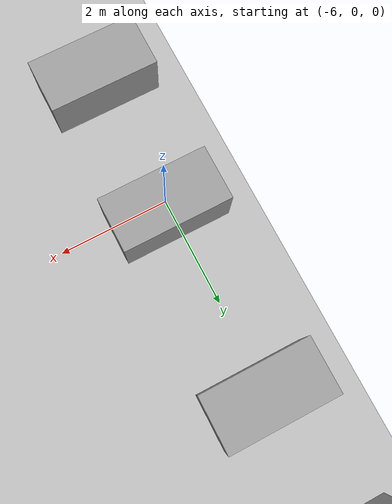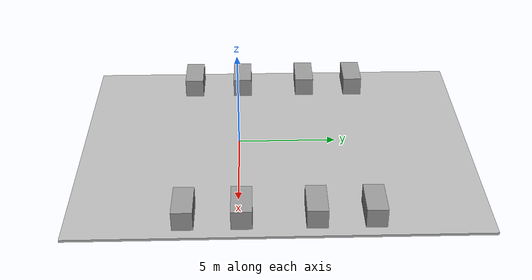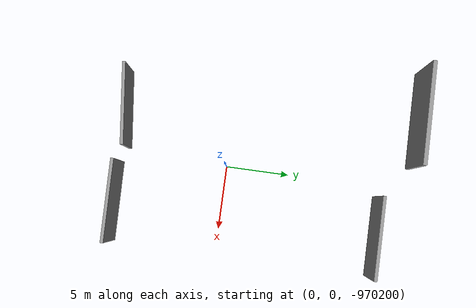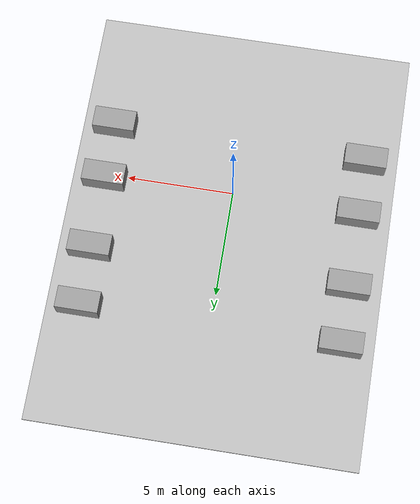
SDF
<sdf version="1.6">
 <world name="default">
  <gravity>0 0 -9.8</gravity>
  <physics name="default_physics" default="0" type="ode">
   <max_step_size>0.001</max_step_size>
   <real_time_factor>1</real_time_factor>
   <real_time_update_rate>1000</real_time_update_rate>
  </physics>
  <model name="warehouse_floor">
   <pose>0.069154 1.90936 -0.200832 0 -0 0</pose>
   <static>1</static>
   <link name="body">
    <inertial>
     <mass>1000</mass>
     <inertia>
      <ixx>1.20008e+06</ixx>
      <ixy>0</ixy>
      <ixz>0</ixz>
      <iyy>8.33342e+06</iyy>
      <iyz>0</iyz>
      <izz>2.03333e+06</izz>
     </inertia>
    </inertial>
    <collision name="collision">
     <geometry>
      <mesh><uri>model://warehouse_floor/meshes/NEWGROUND_TEXTURED.dae</uri><scale>1 1 1</scale></mesh>
     </geometry>
     <surface>
      <friction><ode><mu>0.3</mu><mu2>0.3</mu2><fdir1>0 0 0</fdir1><slip1>0</slip1><slip2>0</slip2></ode></friction>
     </surface>
    </collision>
    <visual name="visual">
     <geometry><mesh><uri>model://warehouse_floor/meshes/NEWGROUND_TEXTURED.dae</uri></mesh></geometry>
     <meta><layer>1</layer></meta>
    </visual>
   </link>
  </model>
  <light name="Warehouse_CeilingLight_003" type="point">
   <pose>0 0 9 0 -0 0</pose>
   <diffuse>0.5 0.5 0.5 1</diffuse>
   <specular>0.2 0.2 0.2 1</specular>
   <attenuation>
    <range>80</range>
    <constant>0.3</constant>
    <linear>0.01</linear>
    <quadratic>0.001</quadratic>
   </attenuation>
   <direction>0.1 0.1 -1</direction>
  </light>
  <magnetic_field>6e-06 2.3e-05 -4.2e-05</magnetic_field>
  <atmosphere type="adiabatic"/>
  <scene><ambient>0.4 0.4 0.4 1</ambient><background>0.7 0.7 0.7 1</background><shadows>1</shadows></scene>
  <spherical_coordinates>
   <surface_model>EARTH_WGS84</surface_model>
   <latitude_deg>0</latitude_deg>
   <longitude_deg>0</longitude_deg>
   <elevation>0</elevation>
   <heading_deg>0</heading_deg>
  </spherical_coordinates>
  <model name="unit_box_0_clone">
   <pose>3.98852 12.2589 -970199 5.9e-05 -0 -0.000188</pose>
   <link name="link">
    <inertial>
     <mass>1</mass>
     <inertia>
      <ixx>0.166667</ixx>
      <ixy>0</ixy>
      <ixz>0</ixz>
      <iyy>0.166667</iyy>
      <iyz>0</iyz>
      <izz>0.166667</izz>
     </inertia>
    </inertial>
    <collision name="collision"><geometry><box><size>6.43407 0.249196 3.31533</size></box></geometry></collision>
    <visual name="visual">
     <geometry><box><size>6.43407 0.249196 3.31533</size></box></geometry>
     <material>
      <script><name>Gazebo/Grey</name><uri>file://media/materials/scripts/gazebo.material</uri></script>
     </material>
    </visual>
   </link>
  </model>
  <model name="unit_box_0_clone_clone">
   <pose>3.89408 -8.51205 -970199 -0 -1e-06 0.032272</pose>
   <link name="link">
    <inertial>
     <mass>1</mass>
     <inertia>
      <ixx>0.166667</ixx>
      <ixy>0</ixy>
      <ixz>0</ixz>
      <iyy>0.166667</iyy>
      <iyz>0</iyz>
      <izz>0.166667</izz>
     </inertia>
    </inertial>
    <collision name="collision"><geometry><box><size>6.43407 0.249196 3.31533</size></box></geometry></collision>
    <visual name="visual">
     <geometry><box><size>6.43407 0.249196 3.31533</size></box></geometry>
     <material>
      <script><name>Gazebo/Grey</name><uri>file://media/materials/scripts/gazebo.material</uri></script>
     </material>
    </visual>
   </link>
  </model>
  <model name="unit_box_0_clone_clone_clone">
   <pose>-3.66562 -8.52907 -970199 -0.023697 0.013115 0.123366</pose>
   <link name="link">
    <inertial>
     <mass>1</mass>
     <inertia>
      <ixx>0.166667</ixx>
      <ixy>0</ixy>
      <ixz>0</ixz>
      <iyy>0.166667</iyy>
      <iyz>0</iyz>
      <izz>0.166667</izz>
     </inertia>
    </inertial>
    <collision name="collision"><geometry><box><size>6.43407 0.249196 3.31533</size></box></geometry></collision>
    <visual name="visual">
     <geometry><box><size>6.43407 0.249196 3.31533</size></box></geometry>
     <material>
      <script><name>Gazebo/Grey</name><uri>file://media/materials/scripts/gazebo.material</uri></script>
     </material>
    </visual>
   </link>
  </model>
  <model name="unit_box_0_clone_clone_0">
   <pose>-4.12987 12.1864 -970191 -3.8e-05 -0 0.005406</pose>
   <link name="link">
    <inertial>
     <mass>1</mass>
     <inertia>
      <ixx>0.166667</ixx>
      <ixy>0</ixy>
      <ixz>0</ixz>
      <iyy>0.166667</iyy>
      <iyz>0</iyz>
      <izz>0.166667</izz>
     </inertia>
    </inertial>
    <collision name="collision"><geometry><box><size>6.43407 0.249196 3.31533</size></box></geometry></collision>
    <visual name="visual">
     <geometry><box><size>6.43407 0.249196 3.31533</size></box></geometry>
     <material>
      <script><name>Gazebo/Grey</name><uri>file://media/materials/scripts/gazebo.material</uri></script>
     </material>
    </visual>
   </link>
  </model>
  <model name="unit_box">
   <pose>6.077744 3.65603 0.359168 0 0 -0.001914</pose>
   <link name="link">
    <inertial>
     <mass>1</mass>
     <inertia>
      <ixx>0.166667</ixx>
      <ixy>0</ixy>
      <ixz>0</ixz>
      <iyy>0.166667</iyy>
      <iyz>0</iyz>
      <izz>0.166667</izz>
     </inertia>
    </inertial>
    <collision name="collision"><geometry><box><size>1.97921 1 1</size></box></geometry></collision>
    <visual name="visual">
     <geometry><box><size>1.97921 1 1</size></box></geometry>
     <material>
      <script><name>Gazebo/Grey</name><uri>file://media/materials/scripts/gazebo.material</uri></script>
     </material>
    </visual>
   </link>
  </model>
  <model name="unit_box_1">
   <pose>6.077744 6.395220 0.359168 0 0 -0.001914</pose>
   <link name="link">
    <inertial>
     <mass>1</mass>
     <inertia>
      <ixx>0.166667</ixx>
      <ixy>0</ixy>
      <ixz>0</ixz>
      <iyy>0.166667</iyy>
      <iyz>0</iyz>
      <izz>0.166667</izz>
     </inertia>
    </inertial>
    <collision name="collision"><geometry><box><size>1.97921 1 1</size></box></geometry></collision>
    <visual name="visual">
     <geometry><box><size>1.97921 1 1</size></box></geometry>
     <material>
      <script><name>Gazebo/Grey</name><uri>file://media/materials/scripts/gazebo.material</uri></script>
     </material>
    </visual>
   </link>
  </model>
  <model name="unit_box_2">
   <pose>6.077744 -2.566217 0.359168 0 0 -0.001914</pose>
   <link name="link">
    <inertial>
     <mass>1</mass>
     <inertia>
      <ixx>0.166667</ixx>
      <ixy>0</ixy>
      <ixz>0</ixz>
      <iyy>0.166667</iyy>
      <iyz>0</iyz>
      <izz>0.166667</izz>
     </inertia>
    </inertial>
    <collision name="collision"><geometry><box><size>1.97921 1 1</size></box></geometry></collision>
    <visual name="visual">
     <geometry><box><size>1.97921 1 1</size></box></geometry>
     <material>
      <script><name>Gazebo/Grey</name><uri>file://media/materials/scripts/gazebo.material</uri></script>
     </material>
    </visual>
   </link>
  </model>
  <model name="unit_box_3">
   <pose>-5.925191 6.395220 0.359168 0 0 -0.001914</pose>
   <link name="link">
    <inertial>
     <mass>1</mass>
     <inertia>
      <ixx>0.166667</ixx>
      <ixy>0</ixy>
      <ixz>0</ixz>
      <iyy>0.166667</iyy>
      <iyz>0</iyz>
      <izz>0.166667</izz>
     </inertia>
    </inertial>
    <collision name="collision"><geometry><box><size>1.97921 1 1</size></box></geometry></collision>
    <visual name="visual">
     <geometry><box><size>1.97921 1 1</size></box></geometry>
     <material>
      <script><name>Gazebo/Grey</name><uri>file://media/materials/scripts/gazebo.material</uri></script>
     </material>
    </visual>
   </link>
  </model>
  <model name="unit_box_4">
   <pose>-5.925191 -2.566217 0.359168 0 0 -0.001914</pose>
   <link name="link">
    <inertial>
     <mass>1</mass>
     <inertia>
      <ixx>0.166667</ixx>
      <ixy>0</ixy>
      <ixz>0</ixz>
      <iyy>0.166667</iyy>
      <iyz>0</iyz>
      <izz>0.166667</izz>
     </inertia>
    </inertial>
    <collision name="collision"><geometry><box><size>1.97921 1 1</size></box></geometry></collision>
    <visual name="visual">
     <geometry><box><size>1.97921 1 1</size></box></geometry>
     <material>
      <script><name>Gazebo/Grey</name><uri>file://media/materials/scripts/gazebo.material</uri></script>
     </material>
    </visual>
   </link>
  </model>
  <model name="unit_box_clone">
   <pose>6.077744 0.155886 0.359168 0 0 -0.001896</pose>
   <link name="link">
    <inertial>
     <mass>1</mass>
     <inertia>
      <ixx>0.166667</ixx>
      <ixy>0</ixy>
      <ixz>0</ixz>
      <iyy>0.166667</iyy>
      <iyz>0</iyz>
      <izz>0.166667</izz>
     </inertia>
    </inertial>
    <collision name="collision"><geometry><box><size>1.97922 1 1</size></box></geometry></collision>
    <visual name="visual">
     <geometry><box><size>1.97922 1 1</size></box></geometry>
     <material>
      <script><name>Gazebo/Grey</name><uri>file://media/materials/scripts/gazebo.material</uri></script>
     </material>
    </visual>
   </link>
  </model>
  <model name="unit_box_clone_clone">
   <pose>-5.925191 0.157575 0.359168 -1e-06 -0 -2e-06</pose>
   <link name="link">
    <inertial>
     <mass>1</mass>
     <inertia>
      <ixx>0.166667</ixx>
      <ixy>0</ixy>
      <ixz>0</ixz>
      <iyy>0.166667</iyy>
      <iyz>0</iyz>
      <izz>0.166667</izz>
     </inertia>
    </inertial>
    <collision name="collision"><geometry><box><size>1.97922 1 1</size></box></geometry></collision>
    <visual name="visual">
     <geometry><box><size>1.97922 1 1</size></box></geometry>
     <material>
      <script><name>Gazebo/Grey</name><uri>file://media/materials/scripts/gazebo.material</uri></script>
     </material>
    </visual>
   </link>
  </model>
  <model name="unit_box_clone_clone_clone">
   <pose>-5.925191 3.65603 0.359168 0 0 -6e-06</pose>
   <link name="link">
    <inertial>
     <mass>1</mass>
     <inertia>
      <ixx>0.166667</ixx>
      <ixy>0</ixy>
      <ixz>0</ixz>
      <iyy>0.166667</iyy>
      <iyz>0</iyz>
      <izz>0.166667</izz>
     </inertia>
    </inertial>
    <collision name="collision"><geometry><box><size>1.97922 1 1</size></box></geometry></collision>
    <visual name="visual">
     <geometry><box><size>1.97922 1 1</size></box></geometry>
     <material>
      <script><name>Gazebo/Grey</name><uri>file://media/materials/scripts/gazebo.material</uri></script>
     </material>
    </visual>
   </link>
  </model>
  <plugin name="gazebo_occupancy_map" filename="libgazebo_2Dmap_plugin.so">
   <map_resolution>0.1</map_resolution>
   <map_height>0.3</map_height>
   <map_size_x>100</map_size_x>
   <map_size_y>100</map_size_y>
   <init_robot_x>0</init_robot_x>
   <init_robot_y>2</init_robot_y>
  </plugin>
 </world>
</sdf>
